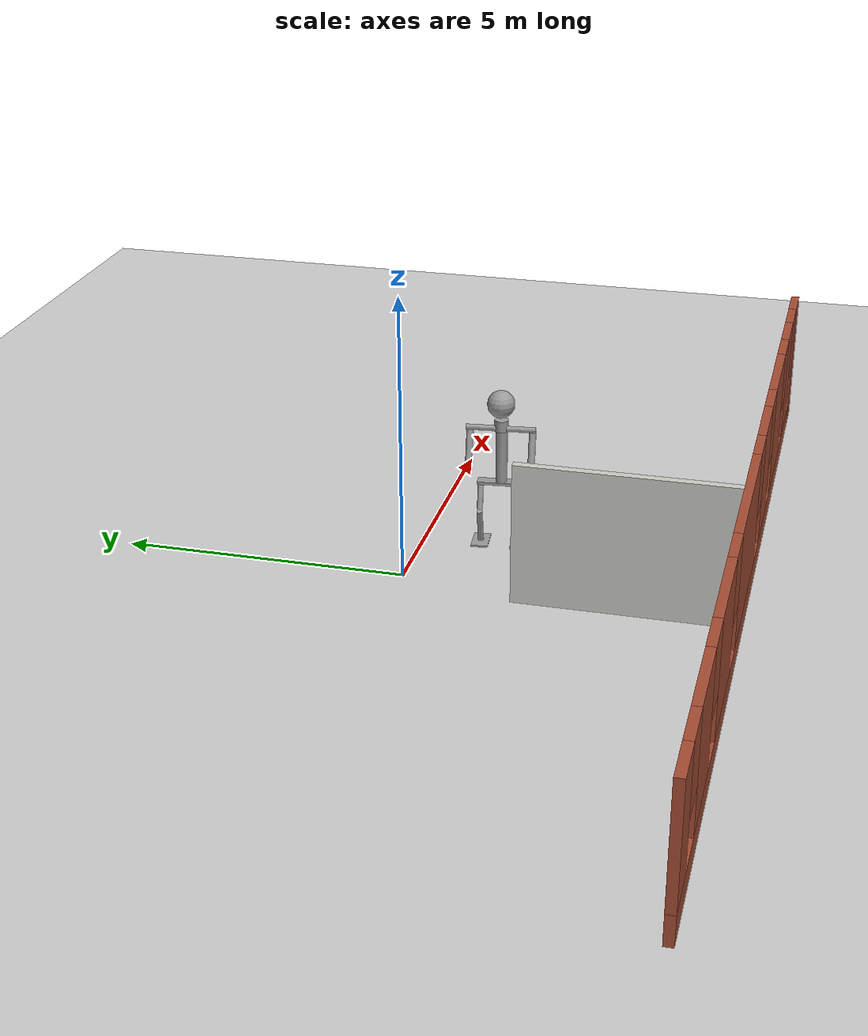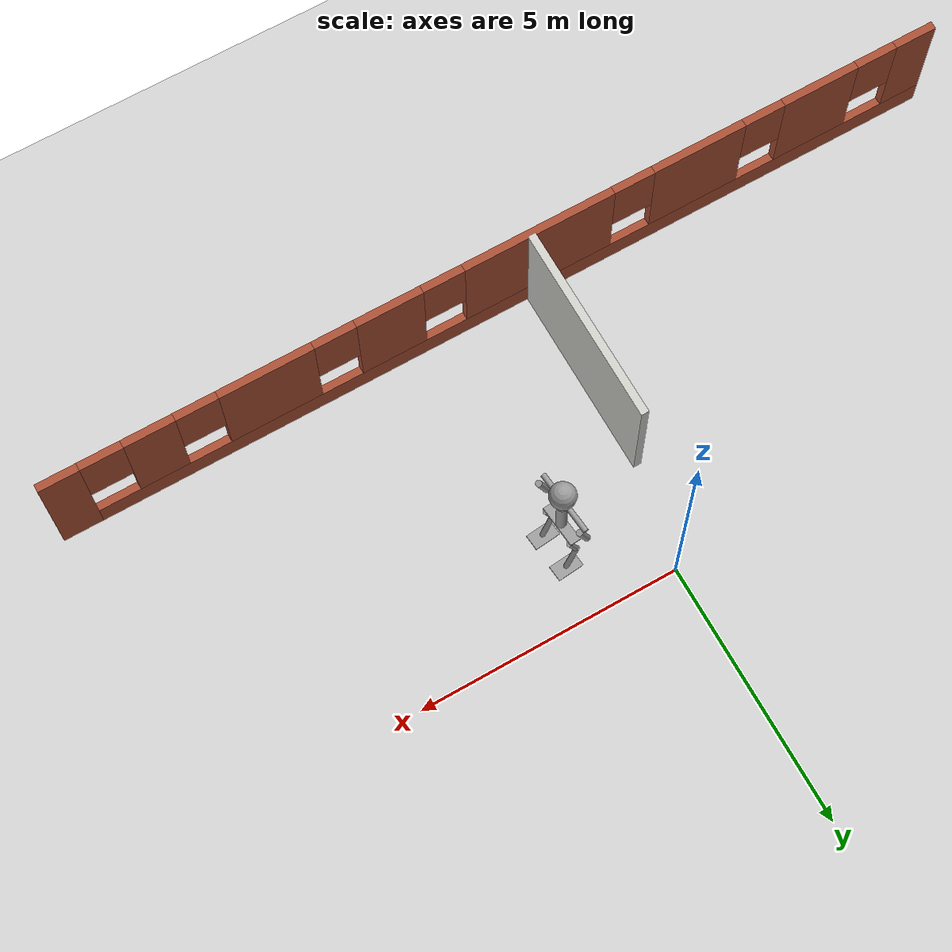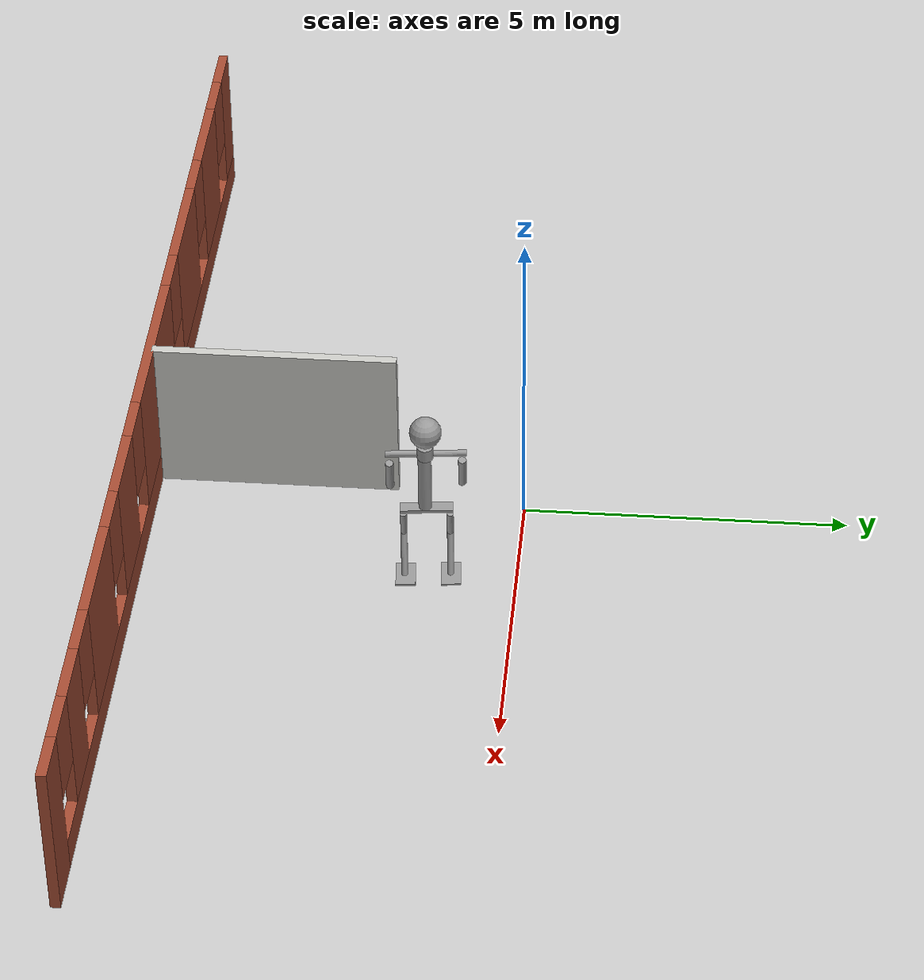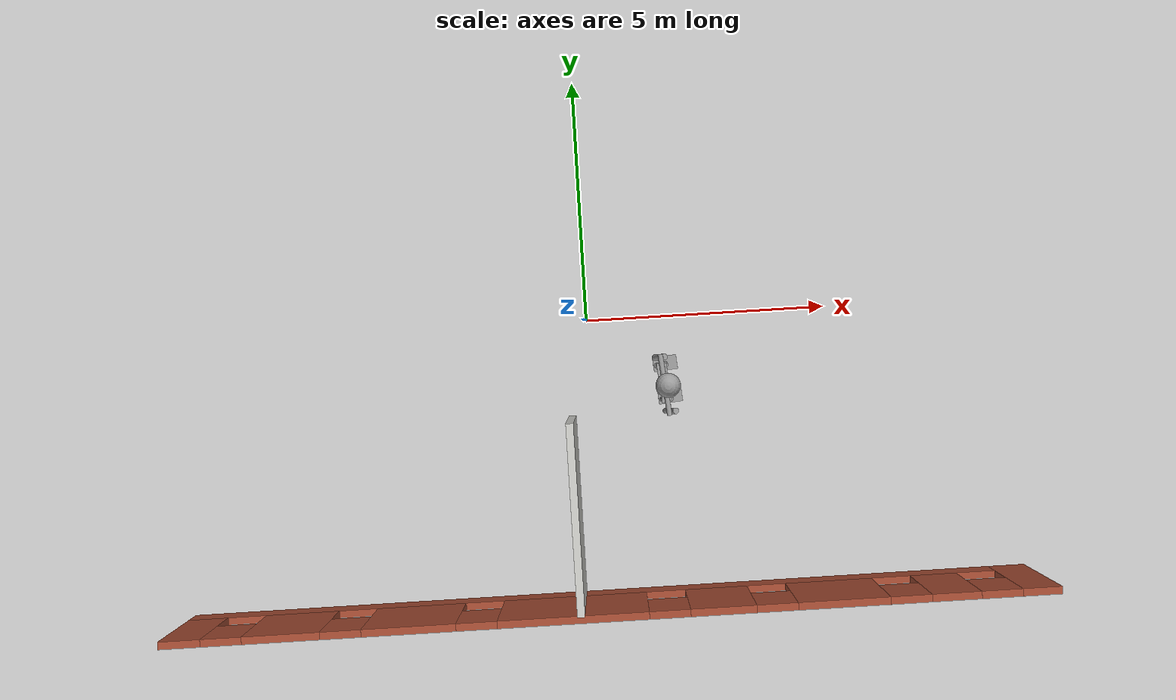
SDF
<sdf version="1.6">
 <world name="default">
  <model name="ground_plane">
   <static>1</static>
   <link name="link">
    <collision name="collision">
     <geometry><plane><normal>0 0 1</normal><size>100 100</size></plane></geometry>
     <surface><friction><ode><mu>100</mu><mu2>50</mu2></ode></friction></surface>
    </collision>
    <visual name="visual">
     <cast_shadows>0</cast_shadows>
     <geometry><plane><normal>0 0 1</normal><size>100 100</size></plane></geometry>
     <material>
      <script><uri>file://media/materials/scripts/gazebo.material</uri><name>Gazebo/Grey</name></script>
     </material>
    </visual>
   </link>
  </model>
  <model name="Building">
   <pose>-0.293126 -0.203944 0 0 -0 0</pose>
   <link name="Wall_15">
    <collision name="Wall_15_Collision">
     <geometry><box><size>3.75 0.15 2.5</size></box></geometry>
     <pose>0 0 1.25 0 -0 0</pose>
    </collision>
    <visual name="Wall_15_Visual">
     <pose>0 0 1.25 0 -0 0</pose>
     <geometry><box><size>3.75 0.15 2.5</size></box></geometry>
     <material>
      <script><uri>file://media/materials/scripts/gazebo.material</uri><name>Gazebo/CeilingTiled</name></script>
      <ambient>0.921569 0.807843 0.615686 1</ambient>
     </material>
     <meta><layer>0</layer></meta>
    </visual>
    <pose>-0.120167 -3.64669 0 0 0 -1.5708</pose>
   </link>
   <link name="Wall_3">
    <pose>0.434915 -5.56135 0 0 -0 3.14159</pose>
    <visual name="Wall_3_Visual_0">
     <pose>-8.37149 0 1.25 0 -0 0</pose>
     <geometry><box><size>0.757013 0.15 2.5</size></box></geometry>
     <material>
      <script><uri>file://media/materials/scripts/gazebo.material</uri><name>Gazebo/Bricks</name></script>
      <ambient>1 1 1 1</ambient>
     </material>
     <meta><layer>0</layer></meta>
    </visual>
    <collision name="Wall_3_Collision_0">
     <geometry><box><size>0.757013 0.15 2.5</size></box></geometry>
     <pose>-8.37149 0 1.25 0 -0 0</pose>
    </collision>
    <visual name="Wall_3_Visual_1">
     <pose>0.378507 0 0.25 0 -0 0</pose>
     <geometry><box><size>16.743 0.15 0.5</size></box></geometry>
     <material>
      <script><uri>file://media/materials/scripts/gazebo.material</uri><name>Gazebo/Bricks</name></script>
      <ambient>1 1 1 1</ambient>
     </material>
     <meta><layer>0</layer></meta>
    </visual>
    <collision name="Wall_3_Collision_1">
     <geometry><box><size>16.743 0.15 0.5</size></box></geometry>
     <pose>0.378507 0 0.25 0 -0 0</pose>
    </collision>
    <visual name="Wall_3_Visual_2">
     <pose>-6.71402 0 1.5 0 -0 0</pose>
     <geometry><box><size>0.957926 0.15 2</size></box></geometry>
     <material>
      <script><uri>file://media/materials/scripts/gazebo.material</uri><name>Gazebo/Bricks</name></script>
      <ambient>1 1 1 1</ambient>
     </material>
     <meta><layer>0</layer></meta>
    </visual>
    <collision name="Wall_3_Collision_2">
     <geometry><box><size>0.957926 0.15 2</size></box></geometry>
     <pose>-6.71402 0 1.5 0 -0 0</pose>
    </collision>
    <visual name="Wall_3_Visual_3">
     <pose>-4.53975 0 1.5 0 -0 0</pose>
     <geometry><box><size>1.79063 0.15 2</size></box></geometry>
     <material>
      <script><uri>file://media/materials/scripts/gazebo.material</uri><name>Gazebo/Bricks</name></script>
      <ambient>1 1 1 1</ambient>
     </material>
     <meta><layer>0</layer></meta>
    </visual>
    <collision name="Wall_3_Collision_3">
     <geometry><box><size>1.79063 0.15 2</size></box></geometry>
     <pose>-4.53975 0 1.5 0 -0 0</pose>
    </collision>
    <visual name="Wall_3_Visual_4">
     <pose>-2.20356 0 1.5 0 -0 0</pose>
     <geometry><box><size>1.28175 0.15 2</size></box></geometry>
     <material>
      <script><uri>file://media/materials/scripts/gazebo.material</uri><name>Gazebo/Bricks</name></script>
      <ambient>1 1 1 1</ambient>
     </material>
     <meta><layer>0</layer></meta>
    </visual>
    <collision name="Wall_3_Collision_4">
     <geometry><box><size>1.28175 0.15 2</size></box></geometry>
     <pose>-2.20356 0 1.5 0 -0 0</pose>
    </collision>
    <visual name="Wall_3_Visual_5">
     <pose>0.710901 0 1.5 0 -0 0</pose>
     <geometry><box><size>2.94716 0.15 2</size></box></geometry>
     <material>
      <script><uri>file://media/materials/scripts/gazebo.material</uri><name>Gazebo/Bricks</name></script>
      <ambient>1 1 1 1</ambient>
     </material>
     <meta><layer>0</layer></meta>
    </visual>
    <collision name="Wall_3_Collision_5">
     <geometry><box><size>2.94716 0.15 2</size></box></geometry>
     <pose>0.710901 0 1.5 0 -0 0</pose>
    </collision>
    <visual name="Wall_3_Visual_6">
     <pose>3.90293 0 1.5 0 -0 0</pose>
     <geometry><box><size>1.83689 0.15 2</size></box></geometry>
     <material>
      <script><uri>file://media/materials/scripts/gazebo.material</uri><name>Gazebo/Bricks</name></script>
      <ambient>1 1 1 1</ambient>
     </material>
     <meta><layer>0</layer></meta>
    </visual>
    <collision name="Wall_3_Collision_6">
     <geometry><box><size>1.83689 0.15 2</size></box></geometry>
     <pose>3.90293 0 1.5 0 -0 0</pose>
    </collision>
    <visual name="Wall_3_Visual_7">
     <pose>6.3779 0 1.5 0 -0 0</pose>
     <geometry><box><size>1.51306 0.15 2</size></box></geometry>
     <material>
      <script><uri>file://media/materials/scripts/gazebo.material</uri><name>Gazebo/Bricks</name></script>
      <ambient>1 1 1 1</ambient>
     </material>
     <meta><layer>0</layer></meta>
    </visual>
    <collision name="Wall_3_Collision_7">
     <geometry><box><size>1.51306 0.15 2</size></box></geometry>
     <pose>6.3779 0 1.5 0 -0 0</pose>
    </collision>
    <visual name="Wall_3_Visual_8">
     <pose>8.34221 0 1.5 0 -0 0</pose>
     <geometry><box><size>0.815569 0.15 2</size></box></geometry>
     <material>
      <script><uri>file://media/materials/scripts/gazebo.material</uri><name>Gazebo/Bricks</name></script>
      <ambient>1 1 1 1</ambient>
     </material>
     <meta><layer>0</layer></meta>
    </visual>
    <collision name="Wall_3_Collision_8">
     <geometry><box><size>0.815569 0.15 2</size></box></geometry>
     <pose>8.34221 0 1.5 0 -0 0</pose>
    </collision>
    <visual name="Wall_3_Visual_9">
     <pose>-7.59299 0 1.9 0 -0 0</pose>
     <geometry><box><size>0.8 0.15 1.2</size></box></geometry>
     <material>
      <script><uri>file://media/materials/scripts/gazebo.material</uri><name>Gazebo/Bricks</name></script>
      <ambient>1 1 1 1</ambient>
     </material>
     <meta><layer>0</layer></meta>
    </visual>
    <collision name="Wall_3_Collision_9">
     <geometry><box><size>0.8 0.15 1.2</size></box></geometry>
     <pose>-7.59299 0 1.9 0 -0 0</pose>
    </collision>
    <visual name="Wall_3_Visual_10">
     <pose>-5.83506 0 1.9 0 -0 0</pose>
     <geometry><box><size>0.8 0.15 1.2</size></box></geometry>
     <material>
      <script><uri>file://media/materials/scripts/gazebo.material</uri><name>Gazebo/Bricks</name></script>
      <ambient>1 1 1 1</ambient>
     </material>
     <meta><layer>0</layer></meta>
    </visual>
    <collision name="Wall_3_Collision_10">
     <geometry><box><size>0.8 0.15 1.2</size></box></geometry>
     <pose>-5.83506 0 1.9 0 -0 0</pose>
    </collision>
    <visual name="Wall_3_Visual_11">
     <pose>-3.24443 0 1.9 0 -0 0</pose>
     <geometry><box><size>0.8 0.15 1.2</size></box></geometry>
     <material>
      <script><uri>file://media/materials/scripts/gazebo.material</uri><name>Gazebo/Bricks</name></script>
      <ambient>1 1 1 1</ambient>
     </material>
     <meta><layer>0</layer></meta>
    </visual>
    <collision name="Wall_3_Collision_11">
     <geometry><box><size>0.8 0.15 1.2</size></box></geometry>
     <pose>-3.24443 0 1.9 0 -0 0</pose>
    </collision>
    <visual name="Wall_3_Visual_12">
     <pose>-1.16268 0 1.9 0 -0 0</pose>
     <geometry><box><size>0.8 0.15 1.2</size></box></geometry>
     <material>
      <script><uri>file://media/materials/scripts/gazebo.material</uri><name>Gazebo/Bricks</name></script>
      <ambient>1 1 1 1</ambient>
     </material>
     <meta><layer>0</layer></meta>
    </visual>
    <collision name="Wall_3_Collision_12">
     <geometry><box><size>0.8 0.15 1.2</size></box></geometry>
     <pose>-1.16268 0 1.9 0 -0 0</pose>
    </collision>
    <visual name="Wall_3_Visual_13">
     <pose>2.58448 0 1.9 0 -0 0</pose>
     <geometry><box><size>0.8 0.15 1.2</size></box></geometry>
     <material>
      <script><uri>file://media/materials/scripts/gazebo.material</uri><name>Gazebo/Bricks</name></script>
      <ambient>1 1 1 1</ambient>
     </material>
     <meta><layer>0</layer></meta>
    </visual>
    <collision name="Wall_3_Collision_13">
     <geometry><box><size>0.8 0.15 1.2</size></box></geometry>
     <pose>2.58448 0 1.9 0 -0 0</pose>
    </collision>
    <visual name="Wall_3_Visual_14">
     <pose>5.22137 0 1.9 0 -0 0</pose>
     <geometry><box><size>0.8 0.15 1.2</size></box></geometry>
     <material>
      <script><uri>file://media/materials/scripts/gazebo.material</uri><name>Gazebo/Bricks</name></script>
      <ambient>1 1 1 1</ambient>
     </material>
     <meta><layer>0</layer></meta>
    </visual>
    <collision name="Wall_3_Collision_14">
     <geometry><box><size>0.8 0.15 1.2</size></box></geometry>
     <pose>5.22137 0 1.9 0 -0 0</pose>
    </collision>
    <visual name="Wall_3_Visual_15">
     <pose>7.53443 0 1.9 0 -0 0</pose>
     <geometry><box><size>0.8 0.15 1.2</size></box></geometry>
     <material>
      <script><uri>file://media/materials/scripts/gazebo.material</uri><name>Gazebo/Bricks</name></script>
      <ambient>1 1 1 1</ambient>
     </material>
     <meta><layer>0</layer></meta>
    </visual>
    <collision name="Wall_3_Collision_15">
     <geometry><box><size>0.8 0.15 1.2</size></box></geometry>
     <pose>7.53443 0 1.9 0 -0 0</pose>
    </collision>
   </link>
   <static>1</static>
  </model>
  <model name="HumanoidRobot_2">
   <model name="Untitled">
    <model name="HumanoidRobot">
     <link name="link_1">
      <pose>-0.173443 0.410402 2.12746 0 -0 0</pose>
      <inertial>
       <mass>0.94</mass>
       <inertia><ixx>0.1</ixx><ixy>0</ixy><ixz>0</ixz><iyy>0.1</iyy><iyz>0</iyz><izz>0.1</izz></inertia>
      </inertial>
      <visual name="visual">
       <geometry><sphere><radius>0.24</radius></sphere></geometry>
       <material>
        <lighting>1</lighting>
        <script><uri>file://media/materials/scripts/gazebo.material</uri><name>Gazebo/Grey</name></script>
        <shader type="pixel"><normal_map>__default__</normal_map></shader>
        <ambient>0.3 0.3 0.3 1</ambient>
        <diffuse>0.7 0.7 0.7 1</diffuse>
        <specular>0.01 0.01 0.01 1</specular>
        <emissive>0 0 0 1</emissive>
       </material>
      </visual>
      <collision name="collision">
       <geometry><sphere><radius>0.24</radius></sphere></geometry>
       <surface>
        <friction>
         <ode><mu>1</mu><mu2>1</mu2><fdir1>0 0 0</fdir1><slip1>0</slip1><slip2>0</slip2></ode>
         <torsional>
          <coefficient>1</coefficient>
          <patch_radius>0</patch_radius>
          <surface_radius>0</surface_radius>
          <use_patch_radius>1</use_patch_radius>
          <ode><slip>0</slip></ode>
         </torsional>
        </friction>
        <bounce><restitution_coefficient>0</restitution_coefficient><threshold>1e+06</threshold></bounce>
        <contact>
         <collide_without_contact>0</collide_without_contact>
         <collide_without_contact_bitmask>1</collide_without_contact_bitmask>
         <collide_bitmask>1</collide_bitmask>
         <ode>
          <soft_cfm>0</soft_cfm>
          <soft_erp>0.2</soft_erp>
          <kp>1e+13</kp>
          <kd>1</kd>
          <max_vel>0.01</max_vel>
          <min_depth>0</min_depth>
         </ode>
         <bullet>
          <split_impulse>1</split_impulse>
          <split_impulse_penetration_threshold>-0.01</split_impulse_penetration_threshold>
          <soft_cfm>0</soft_cfm>
          <soft_erp>0.2</soft_erp>
          <kp>1e+13</kp>
          <kd>1</kd>
         </bullet>
        </contact>
       </surface>
      </collision>
     </link>
     <link name="link_2">
      <pose>-0.183443 0.400402 1.74746 0 -0 0</pose>
      <inertial>
       <mass>1</mass>
       <inertia><ixx>0.145833</ixx><ixy>0</ixy><ixz>0</ixz><iyy>0.145833</iyy><iyz>0</iyz><izz>0.125</izz></inertia>
      </inertial>
      <visual name="visual">
       <geometry><cylinder><radius>0.12</radius><length>0.2</length></cylinder></geometry>
       <material>
        <lighting>1</lighting>
        <script><uri>file://media/materials/scripts/gazebo.material</uri><name>Gazebo/Grey</name></script>
        <shader type="pixel"><normal_map>__default__</normal_map></shader>
        <ambient>0.3 0.3 0.3 1</ambient>
        <diffuse>0.7 0.7 0.7 1</diffuse>
        <specular>0.01 0.01 0.01 1</specular>
        <emissive>0 0 0 1</emissive>
       </material>
      </visual>
      <collision name="collision">
       <geometry><cylinder><radius>0.12</radius><length>0.2</length></cylinder></geometry>
       <surface>
        <friction>
         <ode><mu>1</mu><mu2>1</mu2><fdir1>0 0 0</fdir1><slip1>0</slip1><slip2>0</slip2></ode>
         <torsional>
          <coefficient>1</coefficient>
          <patch_radius>0</patch_radius>
          <surface_radius>0</surface_radius>
          <use_patch_radius>1</use_patch_radius>
          <ode><slip>0</slip></ode>
         </torsional>
        </friction>
        <bounce><restitution_coefficient>0</restitution_coefficient><threshold>1e+06</threshold></bounce>
        <contact>
         <collide_without_contact>0</collide_without_contact>
         <collide_without_contact_bitmask>1</collide_without_contact_bitmask>
         <collide_bitmask>1</collide_bitmask>
         <ode>
          <soft_cfm>0</soft_cfm>
          <soft_erp>0.2</soft_erp>
          <kp>1e+13</kp>
          <kd>1</kd>
          <max_vel>0.01</max_vel>
          <min_depth>0</min_depth>
         </ode>
         <bullet>
          <split_impulse>1</split_impulse>
          <split_impulse_penetration_threshold>-0.01</split_impulse_penetration_threshold>
          <soft_cfm>0</soft_cfm>
          <soft_erp>0.2</soft_erp>
          <kp>1e+13</kp>
          <kd>1</kd>
         </bullet>
        </contact>
       </surface>
      </collision>
     </link>
     <link name="link_3">
      <pose>-0.218443 0.410402 1.69752 0 -0 0</pose>
      <inertial>
       <mass>1</mass>
       <inertia><ixx>0.145833</ixx><ixy>0</ixy><ixz>0</ixz><iyy>0.145833</iyy><iyz>0</iyz><izz>0.125</izz></inertia>
      </inertial>
      <visual name="visual">
       <pose>0 0 0 1.5707 -0 0</pose>
       <geometry><cylinder><radius>0.05</radius><length>1.2</length></cylinder></geometry>
       <material>
        <lighting>1</lighting>
        <script><uri>file://media/materials/scripts/gazebo.material</uri><name>Gazebo/Grey</name></script>
        <shader type="pixel"><normal_map>__default__</normal_map></shader>
        <ambient>0.3 0.3 0.3 1</ambient>
        <diffuse>0.7 0.7 0.7 1</diffuse>
        <specular>0.01 0.01 0.01 1</specular>
        <emissive>0 0 0 1</emissive>
       </material>
      </visual>
      <collision name="collision">
       <pose>0 0 0 1.5707 -0 0</pose>
       <geometry><cylinder><radius>0.05</radius><length>1.2</length></cylinder></geometry>
       <surface>
        <friction>
         <ode><mu>1</mu><mu2>1</mu2><fdir1>0 0 0</fdir1><slip1>0</slip1><slip2>0</slip2></ode>
         <torsional>
          <coefficient>1</coefficient>
          <patch_radius>0</patch_radius>
          <surface_radius>0</surface_radius>
          <use_patch_radius>1</use_patch_radius>
          <ode><slip>0</slip></ode>
         </torsional>
        </friction>
        <bounce><restitution_coefficient>0</restitution_coefficient><threshold>1e+06</threshold></bounce>
        <contact>
         <collide_without_contact>0</collide_without_contact>
         <collide_without_contact_bitmask>1</collide_without_contact_bitmask>
         <collide_bitmask>1</collide_bitmask>
         <ode>
          <soft_cfm>0</soft_cfm>
          <soft_erp>0.2</soft_erp>
          <kp>1e+13</kp>
          <kd>1</kd>
          <max_vel>0.01</max_vel>
          <min_depth>0</min_depth>
         </ode>
         <bullet>
          <split_impulse>1</split_impulse>
          <split_impulse_penetration_threshold>-0.01</split_impulse_penetration_threshold>
          <soft_cfm>0</soft_cfm>
          <soft_erp>0.2</soft_erp>
          <kp>1e+13</kp>
          <kd>1</kd>
         </bullet>
        </contact>
       </surface>
      </collision>
     </link>
     <link name="link_4">
      <pose>-0.173443 -0.129603 1.34313 0 -0 0</pose>
      <inertial>
       <mass>1</mass>
       <inertia><ixx>0.145833</ixx><ixy>0</ixy><ixz>0</ixz><iyy>0.145833</iyy><iyz>0</iyz><izz>0.125</izz></inertia>
      </inertial>
      <visual name="visual">
       <pose>0 0 0 0 0.3 0</pose>
       <geometry><cylinder><radius>0.06</radius><length>0.6</length></cylinder></geometry>
       <material>
        <lighting>1</lighting>
        <script><uri>file://media/materials/scripts/gazebo.material</uri><name>Gazebo/Grey</name></script>
        <shader type="pixel"><normal_map>__default__</normal_map></shader>
        <ambient>0.3 0.3 0.3 1</ambient>
        <diffuse>0.7 0.7 0.7 1</diffuse>
        <specular>0.01 0.01 0.01 1</specular>
        <emissive>0 0 0 1</emissive>
       </material>
      </visual>
      <collision name="collision">
       <pose>0 0 0 0 0.3 0</pose>
       <geometry><cylinder><radius>0.06</radius><length>0.6</length></cylinder></geometry>
       <surface>
        <friction>
         <ode><mu>1</mu><mu2>1</mu2><fdir1>0 0 0</fdir1><slip1>0</slip1><slip2>0</slip2></ode>
         <torsional>
          <coefficient>1</coefficient>
          <patch_radius>0</patch_radius>
          <surface_radius>0</surface_radius>
          <use_patch_radius>1</use_patch_radius>
          <ode><slip>0</slip></ode>
         </torsional>
        </friction>
        <bounce><restitution_coefficient>0</restitution_coefficient><threshold>1e+06</threshold></bounce>
        <contact>
         <collide_without_contact>0</collide_without_contact>
         <collide_without_contact_bitmask>1</collide_without_contact_bitmask>
         <collide_bitmask>1</collide_bitmask>
         <ode>
          <soft_cfm>0</soft_cfm>
          <soft_erp>0.2</soft_erp>
          <kp>1e+13</kp>
          <kd>1</kd>
          <max_vel>0.01</max_vel>
          <min_depth>0</min_depth>
         </ode>
         <bullet>
          <split_impulse>1</split_impulse>
          <split_impulse_penetration_threshold>-0.01</split_impulse_penetration_threshold>
          <soft_cfm>0</soft_cfm>
          <soft_erp>0.2</soft_erp>
          <kp>1e+13</kp>
          <kd>1</kd>
         </bullet>
        </contact>
       </surface>
      </collision>
     </link>
     <link name="link_4_clone">
      <pose>-0.224419 0.950407 1.34313 0 -0 0</pose>
      <inertial>
       <mass>1</mass>
       <inertia><ixx>0.145833</ixx><ixy>0</ixy><ixz>0</ixz><iyy>0.145833</iyy><iyz>0</iyz><izz>0.125</izz></inertia>
      </inertial>
      <visual name="visual">
       <pose>0 0 0 0 0.3 0</pose>
       <geometry><cylinder><radius>0.06</radius><length>0.6</length></cylinder></geometry>
       <material>
        <lighting>1</lighting>
        <script><uri>file://media/materials/scripts/gazebo.material</uri><name>Gazebo/Grey</name></script>
        <shader type="pixel"><normal_map>__default__</normal_map></shader>
        <ambient>0.3 0.3 0.3 1</ambient>
        <diffuse>0.7 0.7 0.7 1</diffuse>
        <specular>0.01 0.01 0.01 1</specular>
        <emissive>0 0 0 1</emissive>
       </material>
      </visual>
      <collision name="collision">
       <pose>0 0 0 0 0.3 0</pose>
       <geometry><cylinder><radius>0.06</radius><length>0.6</length></cylinder></geometry>
       <surface>
        <friction>
         <ode><mu>1</mu><mu2>1</mu2><fdir1>0 0 0</fdir1><slip1>0</slip1><slip2>0</slip2></ode>
         <torsional>
          <coefficient>1</coefficient>
          <patch_radius>0</patch_radius>
          <surface_radius>0</surface_radius>
          <use_patch_radius>1</use_patch_radius>
          <ode><slip>0</slip></ode>
         </torsional>
        </friction>
        <bounce><restitution_coefficient>0</restitution_coefficient><threshold>1e+06</threshold></bounce>
        <contact>
         <collide_without_contact>0</collide_without_contact>
         <collide_without_contact_bitmask>1</collide_without_contact_bitmask>
         <collide_bitmask>1</collide_bitmask>
         <ode>
          <soft_cfm>0</soft_cfm>
          <soft_erp>0.2</soft_erp>
          <kp>1e+13</kp>
          <kd>1</kd>
          <max_vel>0.01</max_vel>
          <min_depth>0</min_depth>
         </ode>
         <bullet>
          <split_impulse>1</split_impulse>
          <split_impulse_penetration_threshold>-0.01</split_impulse_penetration_threshold>
          <soft_cfm>0</soft_cfm>
          <soft_erp>0.2</soft_erp>
          <kp>1e+13</kp>
          <kd>1</kd>
         </bullet>
        </contact>
       </surface>
      </collision>
     </link>
     <link name="link_5">
      <pose>-0.193443 0.390402 1.14746 0 -0 0</pose>
      <inertial>
       <mass>1</mass>
       <inertia><ixx>0.145833</ixx><ixy>0</ixy><ixz>0</ixz><iyy>0.145833</iyy><iyz>0</iyz><izz>0.125</izz></inertia>
      </inertial>
      <visual name="visual">
       <geometry><cylinder><radius>0.1</radius><length>1</length></cylinder></geometry>
       <material>
        <lighting>1</lighting>
        <script><uri>file://media/materials/scripts/gazebo.material</uri><name>Gazebo/Grey</name></script>
        <shader type="pixel"><normal_map>__default__</normal_map></shader>
        <ambient>0.3 0.3 0.3 1</ambient>
        <diffuse>0.7 0.7 0.7 1</diffuse>
        <specular>0.01 0.01 0.01 1</specular>
        <emissive>0 0 0 1</emissive>
       </material>
      </visual>
      <collision name="collision">
       <geometry><cylinder><radius>0.1</radius><length>1</length></cylinder></geometry>
       <surface>
        <friction>
         <ode><mu>1</mu><mu2>1</mu2><fdir1>0 0 0</fdir1><slip1>0</slip1><slip2>0</slip2></ode>
         <torsional>
          <coefficient>1</coefficient>
          <patch_radius>0</patch_radius>
          <surface_radius>0</surface_radius>
          <use_patch_radius>1</use_patch_radius>
          <ode><slip>0</slip></ode>
         </torsional>
        </friction>
        <bounce><restitution_coefficient>0</restitution_coefficient><threshold>1e+06</threshold></bounce>
        <contact>
         <collide_without_contact>0</collide_without_contact>
         <collide_without_contact_bitmask>1</collide_without_contact_bitmask>
         <collide_bitmask>1</collide_bitmask>
         <ode>
          <soft_cfm>0</soft_cfm>
          <soft_erp>0.2</soft_erp>
          <kp>1e+13</kp>
          <kd>1</kd>
          <max_vel>0.01</max_vel>
          <min_depth>0</min_depth>
         </ode>
         <bullet>
          <split_impulse>1</split_impulse>
          <split_impulse_penetration_threshold>-0.01</split_impulse_penetration_threshold>
          <soft_cfm>0</soft_cfm>
          <soft_erp>0.2</soft_erp>
          <kp>1e+13</kp>
          <kd>1</kd>
         </bullet>
        </contact>
       </surface>
      </collision>
     </link>
     <link name="link_6">
      <pose>-0.193443 0.410402 0.672459 0 -0 0</pose>
      <inertial>
       <mass>1</mass>
       <inertia>
        <ixx>0.166667</ixx>
        <ixy>0</ixy>
        <ixz>0</ixz>
        <iyy>0.166667</iyy>
        <iyz>0</iyz>
        <izz>0.166667</izz>
       </inertia>
      </inertial>
      <visual name="visual">
       <geometry><box><size>0.2 0.8 0.05</size></box></geometry>
       <material>
        <lighting>1</lighting>
        <script><uri>file://media/materials/scripts/gazebo.material</uri><name>Gazebo/Grey</name></script>
        <shader type="pixel"><normal_map>__default__</normal_map></shader>
        <ambient>0.3 0.3 0.3 1</ambient>
        <diffuse>0.7 0.7 0.7 1</diffuse>
        <specular>0.01 0.01 0.01 1</specular>
        <emissive>0 0 0 1</emissive>
       </material>
      </visual>
      <collision name="collision">
       <geometry><box><size>0.2 0.8 0.05</size></box></geometry>
       <surface>
        <friction>
         <ode><mu>1</mu><mu2>1</mu2><fdir1>0 0 0</fdir1><slip1>0</slip1><slip2>0</slip2></ode>
         <torsional>
          <coefficient>1</coefficient>
          <patch_radius>0</patch_radius>
          <surface_radius>0</surface_radius>
          <use_patch_radius>1</use_patch_radius>
          <ode><slip>0</slip></ode>
         </torsional>
        </friction>
        <bounce><restitution_coefficient>0</restitution_coefficient><threshold>1e+06</threshold></bounce>
        <contact>
         <collide_without_contact>0</collide_without_contact>
         <collide_without_contact_bitmask>1</collide_without_contact_bitmask>
         <collide_bitmask>1</collide_bitmask>
         <ode>
          <soft_cfm>0</soft_cfm>
          <soft_erp>0.2</soft_erp>
          <kp>1e+13</kp>
          <kd>1</kd>
          <max_vel>0.01</max_vel>
          <min_depth>0</min_depth>
         </ode>
         <bullet>
          <split_impulse>1</split_impulse>
          <split_impulse_penetration_threshold>-0.01</split_impulse_penetration_threshold>
          <soft_cfm>0</soft_cfm>
          <soft_erp>0.2</soft_erp>
          <kp>1e+13</kp>
          <kd>1</kd>
         </bullet>
        </contact>
       </surface>
      </collision>
     </link>
     <link name="link_7">
      <pose>-0.18262 0.060402 0.393848 0 -0 0</pose>
      <inertial>
       <mass>1</mass>
       <inertia><ixx>0.145833</ixx><ixy>0</ixy><ixz>0</ixz><iyy>0.145833</iyy><iyz>0</iyz><izz>0.125</izz></inertia>
      </inertial>
      <visual name="visual">
       <pose>0 0 0 0 0.3 0</pose>
       <geometry><cylinder><radius>0.05</radius><length>0.5</length></cylinder></geometry>
       <material>
        <lighting>1</lighting>
        <script><uri>file://media/materials/scripts/gazebo.material</uri><name>Gazebo/Grey</name></script>
        <shader type="pixel"><normal_map>__default__</normal_map></shader>
        <ambient>0.3 0.3 0.3 1</ambient>
        <diffuse>0.7 0.7 0.7 1</diffuse>
        <specular>0.01 0.01 0.01 1</specular>
        <emissive>0 0 0 1</emissive>
       </material>
      </visual>
      <collision name="collision">
       <pose>0 0 0 0 0.3 0</pose>
       <geometry><cylinder><radius>0.05</radius><length>0.5</length></cylinder></geometry>
       <surface>
        <friction>
         <ode><mu>1</mu><mu2>1</mu2><fdir1>0 0 0</fdir1><slip1>0</slip1><slip2>0</slip2></ode>
         <torsional>
          <coefficient>1</coefficient>
          <patch_radius>0</patch_radius>
          <surface_radius>0</surface_radius>
          <use_patch_radius>1</use_patch_radius>
          <ode><slip>0</slip></ode>
         </torsional>
        </friction>
        <bounce><restitution_coefficient>0</restitution_coefficient><threshold>1e+06</threshold></bounce>
        <contact>
         <collide_without_contact>0</collide_without_contact>
         <collide_without_contact_bitmask>1</collide_without_contact_bitmask>
         <collide_bitmask>1</collide_bitmask>
         <ode>
          <soft_cfm>0</soft_cfm>
          <soft_erp>0.2</soft_erp>
          <kp>1e+13</kp>
          <kd>1</kd>
          <max_vel>0.01</max_vel>
          <min_depth>0</min_depth>
         </ode>
         <bullet>
          <split_impulse>1</split_impulse>
          <split_impulse_penetration_threshold>-0.01</split_impulse_penetration_threshold>
          <soft_cfm>0</soft_cfm>
          <soft_erp>0.2</soft_erp>
          <kp>1e+13</kp>
          <kd>1</kd>
         </bullet>
        </contact>
       </surface>
      </collision>
     </link>
     <link name="link_7_clone">
      <pose>-0.173443 0.760402 0.393849 0 -0 0</pose>
      <inertial>
       <mass>1</mass>
       <inertia><ixx>0.145833</ixx><ixy>0</ixy><ixz>0</ixz><iyy>0.145833</iyy><iyz>0</iyz><izz>0.125</izz></inertia>
      </inertial>
      <visual name="visual">
       <pose>0 0 0 0 0.3 0</pose>
       <geometry><cylinder><radius>0.05</radius><length>0.5</length></cylinder></geometry>
       <material>
        <lighting>1</lighting>
        <script><uri>file://media/materials/scripts/gazebo.material</uri><name>Gazebo/Grey</name></script>
        <shader type="pixel"><normal_map>__default__</normal_map></shader>
        <ambient>0.3 0.3 0.3 1</ambient>
        <diffuse>0.7 0.7 0.7 1</diffuse>
        <specular>0.01 0.01 0.01 1</specular>
        <emissive>0 0 0 1</emissive>
       </material>
      </visual>
      <collision name="collision">
       <pose>0 0 0 0 0.3 0</pose>
       <geometry><cylinder><radius>0.05</radius><length>0.5</length></cylinder></geometry>
       <surface>
        <friction>
         <ode><mu>1</mu><mu2>1</mu2><fdir1>0 0 0</fdir1><slip1>0</slip1><slip2>0</slip2></ode>
         <torsional>
          <coefficient>1</coefficient>
          <patch_radius>0</patch_radius>
          <surface_radius>0</surface_radius>
          <use_patch_radius>1</use_patch_radius>
          <ode><slip>0</slip></ode>
         </torsional>
        </friction>
        <bounce><restitution_coefficient>0</restitution_coefficient><threshold>1e+06</threshold></bounce>
        <contact>
         <collide_without_contact>0</collide_without_contact>
         <collide_without_contact_bitmask>1</collide_without_contact_bitmask>
         <collide_bitmask>1</collide_bitmask>
         <ode>
          <soft_cfm>0</soft_cfm>
          <soft_erp>0.2</soft_erp>
          <kp>1e+13</kp>
          <kd>1</kd>
          <max_vel>0.01</max_vel>
          <min_depth>0</min_depth>
         </ode>
         <bullet>
          <split_impulse>1</split_impulse>
          <split_impulse_penetration_threshold>-0.01</split_impulse_penetration_threshold>
          <soft_cfm>0</soft_cfm>
          <soft_erp>0.2</soft_erp>
          <kp>1e+13</kp>
          <kd>1</kd>
         </bullet>
        </contact>
       </surface>
      </collision>
     </link>
     <link name="link_8">
      <pose>-0.173443 0.060402 -0.208906 0 -0 0</pose>
      <inertial>
       <mass>1</mass>
       <inertia><ixx>0.145833</ixx><ixy>0</ixy><ixz>0</ixz><iyy>0.145833</iyy><iyz>0</iyz><izz>0.125</izz></inertia>
      </inertial>
      <visual name="visual">
       <pose>0 0 0 0 -0.3 0</pose>
       <geometry><cylinder><radius>0.05</radius><length>0.7</length></cylinder></geometry>
       <material>
        <lighting>1</lighting>
        <script><uri>file://media/materials/scripts/gazebo.material</uri><name>Gazebo/Grey</name></script>
        <shader type="pixel"><normal_map>__default__</normal_map></shader>
        <ambient>0.3 0.3 0.3 1</ambient>
        <diffuse>0.7 0.7 0.7 1</diffuse>
        <specular>0.01 0.01 0.01 1</specular>
        <emissive>0 0 0 1</emissive>
       </material>
      </visual>
      <collision name="collision">
       <pose>0 0 0 0 -0.3 0</pose>
       <geometry><cylinder><radius>0.05</radius><length>0.7</length></cylinder></geometry>
       <surface>
        <friction>
         <ode><mu>1</mu><mu2>1</mu2><fdir1>0 0 0</fdir1><slip1>0</slip1><slip2>0</slip2></ode>
         <torsional>
          <coefficient>1</coefficient>
          <patch_radius>0</patch_radius>
          <surface_radius>0</surface_radius>
          <use_patch_radius>1</use_patch_radius>
          <ode><slip>0</slip></ode>
         </torsional>
        </friction>
        <bounce><restitution_coefficient>0</restitution_coefficient><threshold>1e+06</threshold></bounce>
        <contact>
         <collide_without_contact>0</collide_without_contact>
         <collide_without_contact_bitmask>1</collide_without_contact_bitmask>
         <collide_bitmask>1</collide_bitmask>
         <ode>
          <soft_cfm>0</soft_cfm>
          <soft_erp>0.2</soft_erp>
          <kp>1e+13</kp>
          <kd>1</kd>
          <max_vel>0.01</max_vel>
          <min_depth>0</min_depth>
         </ode>
         <bullet>
          <split_impulse>1</split_impulse>
          <split_impulse_penetration_threshold>-0.01</split_impulse_penetration_threshold>
          <soft_cfm>0</soft_cfm>
          <soft_erp>0.2</soft_erp>
          <kp>1e+13</kp>
          <kd>1</kd>
         </bullet>
        </contact>
       </surface>
      </collision>
     </link>
     <link name="link_8_clone">
      <pose>-0.173443 0.760402 -0.208905 0 -0 0</pose>
      <inertial>
       <mass>1</mass>
       <inertia><ixx>0.145833</ixx><ixy>0</ixy><ixz>0</ixz><iyy>0.145833</iyy><iyz>0</iyz><izz>0.125</izz></inertia>
      </inertial>
      <visual name="visual">
       <pose>0 0 0 0 -0.3 0</pose>
       <geometry><cylinder><radius>0.05</radius><length>0.7</length></cylinder></geometry>
       <material>
        <lighting>1</lighting>
        <script><uri>file://media/materials/scripts/gazebo.material</uri><name>Gazebo/Grey</name></script>
        <shader type="pixel"><normal_map>__default__</normal_map></shader>
        <ambient>0.3 0.3 0.3 1</ambient>
        <diffuse>0.7 0.7 0.7 1</diffuse>
        <specular>0.01 0.01 0.01 1</specular>
        <emissive>0 0 0 1</emissive>
       </material>
      </visual>
      <collision name="collision">
       <pose>0 0 0 0 -0.3 0</pose>
       <geometry><cylinder><radius>0.05</radius><length>0.7</length></cylinder></geometry>
       <surface>
        <friction>
         <ode><mu>1</mu><mu2>1</mu2><fdir1>0 0 0</fdir1><slip1>0</slip1><slip2>0</slip2></ode>
         <torsional>
          <coefficient>1</coefficient>
          <patch_radius>0</patch_radius>
          <surface_radius>0</surface_radius>
          <use_patch_radius>1</use_patch_radius>
          <ode><slip>0</slip></ode>
         </torsional>
        </friction>
        <bounce><restitution_coefficient>0</restitution_coefficient><threshold>1e+06</threshold></bounce>
        <contact>
         <collide_without_contact>0</collide_without_contact>
         <collide_without_contact_bitmask>1</collide_without_contact_bitmask>
         <collide_bitmask>1</collide_bitmask>
         <ode>
          <soft_cfm>0</soft_cfm>
          <soft_erp>0.2</soft_erp>
          <kp>1e+13</kp>
          <kd>1</kd>
          <max_vel>0.01</max_vel>
          <min_depth>0</min_depth>
         </ode>
         <bullet>
          <split_impulse>1</split_impulse>
          <split_impulse_penetration_threshold>-0.01</split_impulse_penetration_threshold>
          <soft_cfm>0</soft_cfm>
          <soft_erp>0.2</soft_erp>
          <kp>1e+13</kp>
          <kd>1</kd>
         </bullet>
        </contact>
       </surface>
      </collision>
     </link>
     <link name="link_9">
      <pose>-0.073443 0.072902 -0.54305 0 -0 0</pose>
      <inertial>
       <mass>1</mass>
       <inertia>
        <ixx>0.166667</ixx>
        <ixy>0</ixy>
        <ixz>0</ixz>
        <iyy>0.166667</iyy>
        <iyz>0</iyz>
        <izz>0.166667</izz>
       </inertia>
      </inertial>
      <visual name="visual">
       <geometry><box><size>0.5 0.3 0.03</size></box></geometry>
       <material>
        <lighting>1</lighting>
        <script><uri>file://media/materials/scripts/gazebo.material</uri><name>Gazebo/Grey</name></script>
        <shader type="pixel"><normal_map>__default__</normal_map></shader>
        <ambient>0.3 0.3 0.3 1</ambient>
        <diffuse>0.7 0.7 0.7 1</diffuse>
        <specular>0.01 0.01 0.01 1</specular>
        <emissive>0 0 0 1</emissive>
       </material>
      </visual>
      <collision name="collision">
       <geometry><box><size>0.5 0.3 0.03</size></box></geometry>
       <surface>
        <friction>
         <ode><mu>1</mu><mu2>1</mu2><fdir1>0 0 0</fdir1><slip1>0</slip1><slip2>0</slip2></ode>
         <torsional>
          <coefficient>1</coefficient>
          <patch_radius>0</patch_radius>
          <surface_radius>0</surface_radius>
          <use_patch_radius>1</use_patch_radius>
          <ode><slip>0</slip></ode>
         </torsional>
        </friction>
        <bounce><restitution_coefficient>0</restitution_coefficient><threshold>1e+06</threshold></bounce>
        <contact>
         <collide_without_contact>0</collide_without_contact>
         <collide_without_contact_bitmask>1</collide_without_contact_bitmask>
         <collide_bitmask>1</collide_bitmask>
         <ode>
          <soft_cfm>0</soft_cfm>
          <soft_erp>0.2</soft_erp>
          <kp>1e+13</kp>
          <kd>1</kd>
          <max_vel>0.01</max_vel>
          <min_depth>0</min_depth>
         </ode>
         <bullet>
          <split_impulse>1</split_impulse>
          <split_impulse_penetration_threshold>-0.01</split_impulse_penetration_threshold>
          <soft_cfm>0</soft_cfm>
          <soft_erp>0.2</soft_erp>
          <kp>1e+13</kp>
          <kd>1</kd>
         </bullet>
        </contact>
       </surface>
      </collision>
     </link>
     <link name="link_9_clone">
      <pose>-0.073443 0.760402 -0.543049 0 -0 0</pose>
      <inertial>
       <mass>1</mass>
       <inertia>
        <ixx>0.166667</ixx>
        <ixy>0</ixy>
        <ixz>0</ixz>
        <iyy>0.166667</iyy>
        <iyz>0</iyz>
        <izz>0.166667</izz>
       </inertia>
      </inertial>
      <visual name="visual">
       <geometry><box><size>0.5 0.3 0.03</size></box></geometry>
       <material>
        <lighting>1</lighting>
        <script><uri>file://media/materials/scripts/gazebo.material</uri><name>Gazebo/Grey</name></script>
        <shader type="pixel"><normal_map>__default__</normal_map></shader>
        <ambient>0.3 0.3 0.3 1</ambient>
        <diffuse>0.7 0.7 0.7 1</diffuse>
        <specular>0.01 0.01 0.01 1</specular>
        <emissive>0 0 0 1</emissive>
       </material>
      </visual>
      <collision name="collision">
       <geometry><box><size>0.5 0.3 0.03</size></box></geometry>
       <surface>
        <friction>
         <ode><mu>1</mu><mu2>1</mu2><fdir1>0 0 0</fdir1><slip1>0</slip1><slip2>0</slip2></ode>
         <torsional>
          <coefficient>1</coefficient>
          <patch_radius>0</patch_radius>
          <surface_radius>0</surface_radius>
          <use_patch_radius>1</use_patch_radius>
          <ode><slip>0</slip></ode>
         </torsional>
        </friction>
        <bounce><restitution_coefficient>0</restitution_coefficient><threshold>1e+06</threshold></bounce>
        <contact>
         <collide_without_contact>0</collide_without_contact>
         <collide_without_contact_bitmask>1</collide_without_contact_bitmask>
         <collide_bitmask>1</collide_bitmask>
         <ode>
          <soft_cfm>0</soft_cfm>
          <soft_erp>0.2</soft_erp>
          <kp>1e+13</kp>
          <kd>1</kd>
          <max_vel>0.01</max_vel>
          <min_depth>0</min_depth>
         </ode>
         <bullet>
          <split_impulse>1</split_impulse>
          <split_impulse_penetration_threshold>-0.01</split_impulse_penetration_threshold>
          <soft_cfm>0</soft_cfm>
          <soft_erp>0.2</soft_erp>
          <kp>1e+13</kp>
          <kd>1</kd>
         </bullet>
        </contact>
       </surface>
      </collision>
     </link>
     <joint name="link_1_JOINT_0" type="fixed">
      <parent>link_1</parent>
      <child>link_2</child>
      <axis>
       <xyz>1 0 0</xyz>
       <use_parent_model_frame>0</use_parent_model_frame>
       <limit>
        <lower>-1.79769e+308</lower>
        <upper>1.79769e+308</upper>
        <effort>-1</effort>
        <velocity>-1</velocity>
       </limit>
       <dynamics>
        <spring_reference>0</spring_reference>
        <spring_stiffness>0</spring_stiffness>
        <damping>0</damping>
       </dynamics>
      </axis>
      <physics>
       <ode><limit><cfm>0</cfm><erp>0.2</erp></limit><suspension><cfm>0</cfm><erp>0.2</erp></suspension></ode>
      </physics>
     </joint>
     <joint name="link_2_JOINT_1" type="fixed">
      <parent>link_2</parent>
      <child>link_3</child>
      <axis>
       <xyz>1 0 0</xyz>
       <use_parent_model_frame>0</use_parent_model_frame>
       <limit>
        <lower>-1.79769e+308</lower>
        <upper>1.79769e+308</upper>
        <effort>-1</effort>
        <velocity>-1</velocity>
       </limit>
       <dynamics>
        <spring_reference>0</spring_reference>
        <spring_stiffness>0</spring_stiffness>
        <damping>0</damping>
       </dynamics>
      </axis>
      <physics>
       <ode><limit><cfm>0</cfm><erp>0.2</erp></limit><suspension><cfm>0</cfm><erp>0.2</erp></suspension></ode>
      </physics>
     </joint>
     <joint name="link_2_JOINT_4" type="fixed">
      <parent>link_2</parent>
      <child>link_5</child>
      <axis>
       <xyz>0 0 1</xyz>
       <use_parent_model_frame>0</use_parent_model_frame>
       <limit>
        <lower>-1.79769e+308</lower>
        <upper>1.79769e+308</upper>
        <effort>-1</effort>
        <velocity>-1</velocity>
       </limit>
       <dynamics>
        <spring_reference>0</spring_reference>
        <spring_stiffness>0</spring_stiffness>
        <damping>0</damping>
       </dynamics>
      </axis>
      <physics>
       <ode><limit><cfm>0</cfm><erp>0.2</erp></limit><suspension><cfm>0</cfm><erp>0.2</erp></suspension></ode>
      </physics>
     </joint>
     <joint name="link_3_JOINT_2" type="fixed">
      <parent>link_3</parent>
      <child>link_4</child>
      <axis>
       <xyz>1 0 0</xyz>
       <use_parent_model_frame>0</use_parent_model_frame>
       <limit>
        <lower>-1.79769e+308</lower>
        <upper>1.79769e+308</upper>
        <effort>-1</effort>
        <velocity>-1</velocity>
       </limit>
       <dynamics>
        <spring_reference>0</spring_reference>
        <spring_stiffness>0</spring_stiffness>
        <damping>0</damping>
       </dynamics>
      </axis>
      <physics>
       <ode><limit><cfm>0</cfm><erp>0.2</erp></limit><suspension><cfm>0</cfm><erp>0.2</erp></suspension></ode>
      </physics>
     </joint>
     <joint name="link_3_JOINT_3" type="fixed">
      <parent>link_3</parent>
      <child>link_4_clone</child>
      <axis>
       <xyz>1 0 0</xyz>
       <use_parent_model_frame>0</use_parent_model_frame>
       <limit>
        <lower>-1.79769e+308</lower>
        <upper>1.79769e+308</upper>
        <effort>-1</effort>
        <velocity>-1</velocity>
       </limit>
       <dynamics>
        <spring_reference>0</spring_reference>
        <spring_stiffness>0</spring_stiffness>
        <damping>0</damping>
       </dynamics>
      </axis>
      <physics>
       <ode><limit><cfm>0</cfm><erp>0.2</erp></limit><suspension><cfm>0</cfm><erp>0.2</erp></suspension></ode>
      </physics>
     </joint>
     <joint name="link_5_JOINT_5" type="fixed">
      <parent>link_5</parent>
      <child>link_6</child>
      <axis>
       <xyz>0 0 1</xyz>
       <use_parent_model_frame>0</use_parent_model_frame>
       <limit>
        <lower>-1.79769e+308</lower>
        <upper>1.79769e+308</upper>
        <effort>-1</effort>
        <velocity>-1</velocity>
       </limit>
       <dynamics>
        <spring_reference>0</spring_reference>
        <spring_stiffness>0</spring_stiffness>
        <damping>0</damping>
       </dynamics>
      </axis>
      <physics>
       <ode><limit><cfm>0</cfm><erp>0.2</erp></limit><suspension><cfm>0</cfm><erp>0.2</erp></suspension></ode>
      </physics>
     </joint>
     <joint name="link_6_JOINT_6" type="fixed">
      <parent>link_6</parent>
      <child>link_7</child>
      <axis>
       <xyz>0 1 0</xyz>
       <use_parent_model_frame>0</use_parent_model_frame>
       <limit>
        <lower>-1.79769e+308</lower>
        <upper>1.79769e+308</upper>
        <effort>-1</effort>
        <velocity>-1</velocity>
       </limit>
       <dynamics>
        <spring_reference>0</spring_reference>
        <spring_stiffness>0</spring_stiffness>
        <damping>0</damping>
        <friction>0</friction>
       </dynamics>
      </axis>
      <physics>
       <ode><limit><cfm>0</cfm><erp>0.2</erp></limit><suspension><cfm>0</cfm><erp>0.2</erp></suspension></ode>
      </physics>
     </joint>
     <joint name="link_6_JOINT_7" type="fixed">
      <parent>link_6</parent>
      <child>link_7_clone</child>
      <axis>
       <xyz>0 1 0</xyz>
       <use_parent_model_frame>0</use_parent_model_frame>
       <limit>
        <lower>-1.79769e+308</lower>
        <upper>1.79769e+308</upper>
        <effort>-1</effort>
        <velocity>-1</velocity>
       </limit>
       <dynamics>
        <spring_reference>0</spring_reference>
        <spring_stiffness>0</spring_stiffness>
        <damping>0</damping>
       </dynamics>
      </axis>
      <physics>
       <ode><limit><cfm>0</cfm><erp>0.2</erp></limit><suspension><cfm>0</cfm><erp>0.2</erp></suspension></ode>
      </physics>
     </joint>
     <joint name="link_7_JOINT_8" type="fixed">
      <parent>link_7</parent>
      <child>link_8</child>
      <axis>
       <xyz>0 1 0</xyz>
       <use_parent_model_frame>0</use_parent_model_frame>
       <limit>
        <lower>-1.79769e+308</lower>
        <upper>1.79769e+308</upper>
        <effort>-1</effort>
        <velocity>-1</velocity>
       </limit>
       <dynamics>
        <spring_reference>0</spring_reference>
        <spring_stiffness>0</spring_stiffness>
        <damping>0</damping>
       </dynamics>
      </axis>
      <physics>
       <ode><limit><cfm>0</cfm><erp>0.2</erp></limit><suspension><cfm>0</cfm><erp>0.2</erp></suspension></ode>
      </physics>
     </joint>
     <joint name="link_7_clone_JOINT_9" type="fixed">
      <parent>link_7_clone</parent>
      <child>link_8_clone</child>
      <axis>
       <xyz>0 1 0</xyz>
       <use_parent_model_frame>0</use_parent_model_frame>
       <limit>
        <lower>-1.79769e+308</lower>
        <upper>1.79769e+308</upper>
        <effort>-1</effort>
        <velocity>-1</velocity>
       </limit>
       <dynamics>
        <spring_reference>0</spring_reference>
        <spring_stiffness>0</spring_stiffness>
        <damping>0</damping>
       </dynamics>
      </axis>
      <physics>
       <ode><limit><cfm>0</cfm><erp>0.2</erp></limit><suspension><cfm>0</cfm><erp>0.2</erp></suspension></ode>
      </physics>
     </joint>
     <joint name="link_8_JOINT_10" type="fixed">
      <parent>link_8</parent>
      <child>link_9</child>
      <axis>
       <xyz>0 1 0</xyz>
       <use_parent_model_frame>0</use_parent_model_frame>
       <limit>
        <lower>-1.79769e+308</lower>
        <upper>1.79769e+308</upper>
        <effort>-1</effort>
        <velocity>-1</velocity>
       </limit>
       <dynamics>
        <spring_reference>0</spring_reference>
        <spring_stiffness>0</spring_stiffness>
        <damping>0</damping>
       </dynamics>
      </axis>
      <physics>
       <ode><limit><cfm>0</cfm><erp>0.2</erp></limit><suspension><cfm>0</cfm><erp>0.2</erp></suspension></ode>
      </physics>
     </joint>
     <joint name="link_8_clone_JOINT_11" type="fixed">
      <parent>link_8_clone</parent>
      <child>link_9_clone</child>
      <axis>
       <xyz>0 1 0</xyz>
       <use_parent_model_frame>0</use_parent_model_frame>
       <limit>
        <lower>-1.79769e+308</lower>
        <upper>1.79769e+308</upper>
        <effort>-1</effort>
        <velocity>-1</velocity>
       </limit>
       <dynamics>
        <spring_reference>0</spring_reference>
        <spring_stiffness>0</spring_stiffness>
        <damping>0</damping>
       </dynamics>
      </axis>
      <physics>
       <ode><limit><cfm>0</cfm><erp>0.2</erp></limit><suspension><cfm>0</cfm><erp>0.2</erp></suspension></ode>
      </physics>
     </joint>
     <static>0</static>
     <pose>-3e-06 -2e-06 -0 0 -0 0</pose>
    </model>
    <static>1</static>
    <pose>-3e-06 3e-06 0 0 -0 0</pose>
   </model>
   <static>1</static>
   <pose>1.74178 -1.74186 0.558046 -0 -2e-06 0.095511</pose>
  </model>
 </world>
</sdf>
